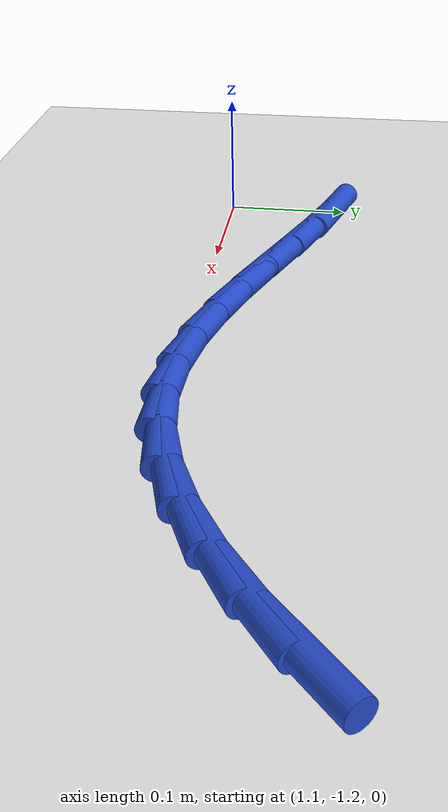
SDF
<sdf version="1.6">
 <world name="default">
  <model name="ground_plane">
   <static>1</static>
   <link name="link">
    <collision name="collision">
     <geometry><plane><normal>0 0 1</normal><size>100 100</size></plane></geometry>
     <surface><friction><ode><mu>100</mu><mu2>50</mu2></ode></friction></surface>
    </collision>
    <visual name="visual">
     <cast_shadows>0</cast_shadows>
     <geometry><plane><normal>0 0 1</normal><size>100 100</size></plane></geometry>
     <material>
      <script><uri>file://media/materials/scripts/gazebo.material</uri><name>Gazebo/WhiteGlow</name></script>
     </material>
    </visual>
   </link>
  </model>
  <model name="line">
   <link name="link_120">
    <pose>1.6347807344157417 -1.086603824891292 0.01 0 1.57 0.7431405620050722</pose>
    <collision name="collision">
     <geometry><cylinder><radius>0.01</radius><length>0.08</length></cylinder></geometry>
    </collision>
    <visual name="visual">
     <material>
      <script><name>Gazebo/Blue</name><uri>file://media/materials/scripts/gazebo.material</uri></script>
     </material>
     <geometry><cylinder><radius>0.01</radius><length>0.08</length></cylinder></geometry>
    </visual>
   </link>
   <link name="link_121">
    <pose>1.6030131473634548 -1.1157939508286399 0.01 0 1.57 0.6575092026158929</pose>
    <collision name="collision">
     <geometry><cylinder><radius>0.01</radius><length>0.08</length></cylinder></geometry>
    </collision>
    <visual name="visual">
     <material>
      <script><name>Gazebo/Blue</name><uri>file://media/materials/scripts/gazebo.material</uri></script>
     </material>
     <geometry><cylinder><radius>0.01</radius><length>0.08</length></cylinder></geometry>
    </visual>
   </link>
   <link name="link_122">
    <pose>1.5697496536590085 -1.1414774096038276 0.01 0 1.57 0.5584887843518715</pose>
    <collision name="collision">
     <geometry><cylinder><radius>0.01</radius><length>0.08</length></cylinder></geometry>
    </collision>
    <visual name="visual">
     <material>
      <script><name>Gazebo/Blue</name><uri>file://media/materials/scripts/gazebo.material</uri></script>
     </material>
     <geometry><cylinder><radius>0.01</radius><length>0.08</length></cylinder></geometry>
    </visual>
   </link>
   <link name="link_123">
    <pose>1.5352372245052794 -1.1630423733838464 0.01 0 1.57 0.4426509282426694</pose>
    <collision name="collision">
     <geometry><cylinder><radius>0.01</radius><length>0.08</length></cylinder></geometry>
    </collision>
    <visual name="visual">
     <material>
      <script><name>Gazebo/Blue</name><uri>file://media/materials/scripts/gazebo.material</uri></script>
     </material>
     <geometry><cylinder><radius>0.01</radius><length>0.08</length></cylinder></geometry>
    </visual>
   </link>
   <link name="link_124">
    <pose>1.499722831105145 -1.1798770143356878 0.01 0 1.57 0.30685634500793973</pose>
    <collision name="collision">
     <geometry><cylinder><radius>0.01</radius><length>0.08</length></cylinder></geometry>
    </collision>
    <visual name="visual">
     <material>
      <script><name>Gazebo/Blue</name><uri>file://media/materials/scripts/gazebo.material</uri></script>
     </material>
     <geometry><cylinder><radius>0.01</radius><length>0.08</length></cylinder></geometry>
    </visual>
   </link>
   <link name="link_125">
    <pose>1.4634534446614815 -1.1913695046263437 0.01 0 1.57 0.14955567193795155</pose>
    <collision name="collision">
     <geometry><cylinder><radius>0.01</radius><length>0.08</length></cylinder></geometry>
    </collision>
    <visual name="visual">
     <material>
      <script><name>Gazebo/Blue</name><uri>file://media/materials/scripts/gazebo.material</uri></script>
     </material>
     <geometry><cylinder><radius>0.01</radius><length>0.08</length></cylinder></geometry>
    </visual>
   </link>
   <link name="link_126">
    <pose>1.426675515365389 -1.1969112313760868 0.01 0 1.57 -0.01389437859304322</pose>
    <collision name="collision">
     <geometry><cylinder><radius>0.01</radius><length>0.08</length></cylinder></geometry>
    </collision>
    <visual name="visual">
     <material>
      <script><name>Gazebo/Blue</name><uri>file://media/materials/scripts/gazebo.material</uri></script>
     </material>
     <geometry><cylinder><radius>0.01</radius><length>0.08</length></cylinder></geometry>
    </visual>
   </link>
   <link name="link_127">
    <pose>1.3895541660320767 -1.1963954201010365 0.01 0 1.57 -0.1493521262012131</pose>
    <collision name="collision">
     <geometry><cylinder><radius>0.01</radius><length>0.08</length></cylinder></geometry>
    </collision>
    <visual name="visual">
     <material>
      <script><name>Gazebo/Blue</name><uri>file://media/materials/scripts/gazebo.material</uri></script>
     </material>
     <geometry><cylinder><radius>0.01</radius><length>0.08</length></cylinder></geometry>
    </visual>
   </link>
   <link name="link_128">
    <pose>1.3520856321203754 -1.190757431995173 0.01 0 1.57 -0.25081385460173256</pose>
    <collision name="collision">
     <geometry><cylinder><radius>0.01</radius><length>0.08</length></cylinder></geometry>
    </collision>
    <visual name="visual">
     <material>
      <script><name>Gazebo/Blue</name><uri>file://media/materials/scripts/gazebo.material</uri></script>
     </material>
     <geometry><cylinder><radius>0.01</radius><length>0.08</length></cylinder></geometry>
    </visual>
   </link>
   <link name="link_129">
    <pose>1.3142451260321928 -1.1810623530474171 0.01 0 1.57 -0.32036895397231685</pose>
    <collision name="collision">
     <geometry><cylinder><radius>0.01</radius><length>0.08</length></cylinder></geometry>
    </collision>
    <visual name="visual">
     <material>
      <script><name>Gazebo/Blue</name><uri>file://media/materials/scripts/gazebo.material</uri></script>
     </material>
     <geometry><cylinder><radius>0.01</radius><length>0.08</length></cylinder></geometry>
    </visual>
   </link>
   <link name="link_130">
    <pose>1.2760078601694385 -1.168375269246692 0.01 0 1.57 -0.36142019240842577</pose>
    <collision name="collision">
     <geometry><cylinder><radius>0.01</radius><length>0.08</length></cylinder></geometry>
    </collision>
    <visual name="visual">
     <material>
      <script><name>Gazebo/Blue</name><uri>file://media/materials/scripts/gazebo.material</uri></script>
     </material>
     <geometry><cylinder><radius>0.01</radius><length>0.08</length></cylinder></geometry>
    </visual>
   </link>
   <link name="link_131">
    <pose>1.2373490469340203 -1.1537612665819197 0.01 0 1.57 -0.3768366293251254</pose>
    <collision name="collision">
     <geometry><cylinder><radius>0.01</radius><length>0.08</length></cylinder></geometry>
    </collision>
    <visual name="visual">
     <material>
      <script><name>Gazebo/Blue</name><uri>file://media/materials/scripts/gazebo.material</uri></script>
     </material>
     <geometry><cylinder><radius>0.01</radius><length>0.08</length></cylinder></geometry>
    </visual>
   </link>
   <link name="link_132">
    <pose>1.1982438987278488 -1.1382854310420234 0.01 0 1.57 -0.3682946130674141</pose>
    <collision name="collision">
     <geometry><cylinder><radius>0.01</radius><length>0.08</length></cylinder></geometry>
    </collision>
    <visual name="visual">
     <material>
      <script><name>Gazebo/Blue</name><uri>file://media/materials/scripts/gazebo.material</uri></script>
     </material>
     <geometry><cylinder><radius>0.01</radius><length>0.08</length></cylinder></geometry>
    </visual>
   </link>
   <link name="link_133">
    <pose>1.158667627952833 -1.1230128486159257 0.01 0 1.57 -0.3362074346570608</pose>
    <collision name="collision">
     <geometry><cylinder><radius>0.01</radius><length>0.08</length></cylinder></geometry>
    </collision>
    <visual name="visual">
     <material>
      <script><name>Gazebo/Blue</name><uri>file://media/materials/scripts/gazebo.material</uri></script>
     </material>
     <geometry><cylinder><radius>0.01</radius><length>0.08</length></cylinder></geometry>
    </visual>
   </link>
   <link name="link_134">
    <pose>1.1185954470108808 -1.1090086052925476 0.01 0 1.57 -0.2799581414800669</pose>
    <collision name="collision">
     <geometry><cylinder><radius>0.01</radius><length>0.08</length></cylinder></geometry>
    </collision>
    <visual name="visual">
     <material>
      <script><name>Gazebo/Blue</name><uri>file://media/materials/scripts/gazebo.material</uri></script>
     </material>
     <geometry><cylinder><radius>0.01</radius><length>0.08</length></cylinder></geometry>
    </visual>
   </link>
  </model>
 </world>
</sdf>
